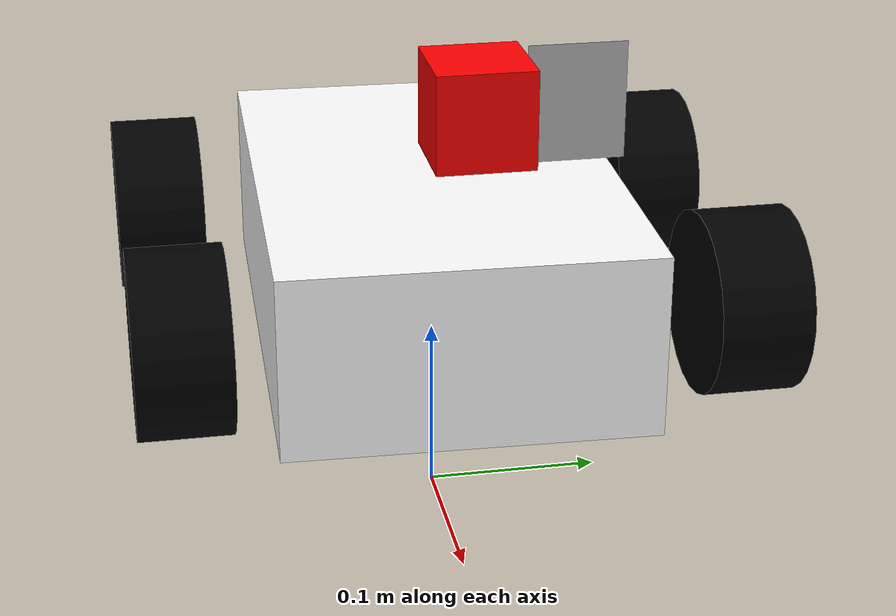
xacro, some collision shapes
<?xml version="1.0"?>

<robot xmlns:xacro="http://www.ros.org/wiki/xacro"
 	xmlns:sensor="http://playerstage.sourceforge.net/gazebo/xmlschema/#sensor"
    	xmlns:controller="http://playerstage.sourceforge.net/gazebo/xmlschema/#controller"
    	xmlns:interface="http://playerstage.sourceforge.net/gazebo/xmlschema/#interface"
	name="robot1_xacro">

	<xacro:property name="base_mass" value="5" /> <!-- in kg-->
	<xacro:property name="base_x_size" value="0.2" />
  	<xacro:property name="base_y_size" value="0.3" />
  	<xacro:property name="base_z_size" value="0.1" />

	<!-- Wheels -->
  	<xacro:property name="wheel_mass" value="1" /> <!-- in kg-->
	<xacro:property name="length_wheel" value="0.05" />
	<xacro:property name="radius_wheel" value="0.05" />
	<xacro:property name="camera_link" value="0.05" />

	<xacro:macro name="default_inertial" params="mass">
               <inertial>
                       <mass value="${mass}" />
                       <inertia ixx="1.0" ixy="0.0" ixz="0.0"
                                iyy="1.0" iyz="0.0"
                                izz="1.0" />
               </inertial>
	</xacro:macro>

  	<xacro:macro name="box_inertia" params="m x y z">
  	  <inertia  ixx="${m*(y*y+z*z)/12}" ixy = "0" ixz = "0"
  	            iyy="${m*(x*x+z*z)/12}" iyz = "0"
  	            izz="${m*(x*x+z*z)/12}" />
  	</xacro:macro>

	<xacro:macro name="cylinder_inertia" params="m r h">
	    <inertia  ixx="${m*(3*r*r+h*h)/12}" ixy = "0" ixz = "0"
	              iyy="${m*(3*r*r+h*h)/12}" iyz = "0"
	              izz="${m*r*r/2}" />
	</xacro:macro>

	<link name="base_footprint">
   		<visual>
			<geometry>
      				<box size="0.001 0.001 0.001"/>
     			</geometry>
			<origin rpy="0 0 0" xyz="0 0 0"/>
   		</visual>
 	</link>
 	<xacro:include filename="$(find robot1_description)/urdf/robot.gazebo" />

	<gazebo reference="base_footprint">
		<material>Gazebo/Green</material>
		<turnGravityOff>false</turnGravityOff>
	</gazebo>

	<joint name="base_footprint_joint" type="fixed">
		<origin xyz="0 0 0.15" />
		<parent link="base_footprint" />
		<child link="base_link" />
	</joint>

	<link name="base_link">
   		<visual>
			<geometry>
      				<box size="${base_x_size} .3 .1"/>
     			</geometry>
			<origin rpy="0 0 1.54" xyz="0 0 0"/>
			<material name="white">
				<color rgba="1 1 1 1"/>
			</material>
   		</visual>
		<collision>
			<geometry>
       				<box size="0.2 .3 0.1"/>
			</geometry>
		</collision>
		<inertial>
      		<mass value="${base_mass}" />
      			<origin xyz="0 0 0" />
      			<!--The 3x3 rotational inertia matrix. -->
      			<xacro:box_inertia  m="${base_mass}" x="${base_x_size}" y="${base_y_size}" z="${base_z_size}"/>
    		</inertial>

 	</link>

 	<link name="wheel_1">
   		<visual>
     			<geometry>
       				<cylinder length="${length_wheel}" radius="${radius_wheel}"/>
     			</geometry>
			<origin rpy="0 0 0" xyz="0 0 0"/>
   			<material name="black">
				<color rgba="0 0 0 1"/>
			</material>
		</visual>
		<collision>
			<geometry>
       				<cylinder length="${length_wheel}" radius="${radius_wheel}"/>
			</geometry>
		</collision>

		<inertial>
        		<mass value="${wheel_mass}" />
        		<origin xyz="0 0 0" />
        		<xacro:cylinder_inertia  m="${wheel_mass}" r="${radius_wheel}" h="${length_wheel}" />
      		</inertial>

 	</link>

 	<link name="wheel_2">
   		<visual>
     			<geometry>
       				<cylinder length="${length_wheel}" radius="${radius_wheel}"/>
     			</geometry>
			<origin rpy="0 0 0" xyz="0 0 0"/>
   			<material name="black"/>
   		</visual>
		<collision>
			<geometry>
       				<cylinder length="${length_wheel}" radius="${radius_wheel}"/>
			</geometry>
		</collision>
		<inertial>
                        <mass value="${wheel_mass}" />
                        <origin xyz="0 0 0" />
                        <xacro:cylinder_inertia  m="${wheel_mass}" r="${radius_wheel}" h="${length_wheel}" />
                </inertial>

 	</link>

 	<link name="wheel_3">
   		<visual>
     			<geometry>
       				<cylinder length="${length_wheel}" radius="${radius_wheel}"/>
     			</geometry>

			<origin rpy="0 0 0" xyz="0 0 0"/>
   			<material name="black"/>
   		</visual>
		<collision>
			<geometry>
       				<cylinder length="${length_wheel}" radius="${radius_wheel}"/>
			</geometry>
		</collision>
		<inertial>
                        <mass value="${wheel_mass}" />
                        <origin xyz="0 0 0" />
                        <xacro:cylinder_inertia  m="${wheel_mass}" r="${radius_wheel}" h="${length_wheel}" />
                </inertial>
 	</link>

 	<link name="wheel_4">
   		<visual>
     			<geometry>
       				<cylinder length="${length_wheel}" radius="${radius_wheel}"/>
     			</geometry>
			<origin rpy="0 0 0" xyz="0 0 0" />
   			<material name="black"/>
   		</visual>
		<collision>
			<geometry>
       				<cylinder length="${length_wheel}" radius="${radius_wheel}"/>
			</geometry>
		</collision>
		<inertial>
                        <mass value="${wheel_mass}" />
                        <origin xyz="0 0 0" />
                        <xacro:cylinder_inertia  m="${wheel_mass}" r="${radius_wheel}" h="${length_wheel}" />
                </inertial>

 	</link>

 <joint name="base_to_wheel1" type="continuous">
   <parent link="base_link"/>
   <child link="wheel_1"/>
   <origin rpy="-1.5707 0 0" xyz="0.1 0.15 0"/>
   <axis xyz="0 0 1" />
 </joint>

 <joint name="base_to_wheel2" type="continuous">
   <axis xyz="0 0 1" />
   <anchor xyz="0 0 0" />
   <limit effort="100" velocity="100" />
   <parent link="base_link"/>
   <child link="wheel_2"/>
   <origin rpy="-1.5707 0 0" xyz="-0.1 0.15 0"/>
</joint>

 <joint name="base_to_wheel3" type="continuous">
   <parent link="base_link"/>
   <axis xyz="0 0 1" />
   <child link="wheel_3"/>
   <origin rpy="-1.5707 0 0" xyz="0.1 -0.15 0"/>
 </joint>

 <joint name="base_to_wheel4" type="continuous">
   <parent link="base_link"/>
   <axis xyz="0 0 1" />
   <child link="wheel_4"/>
   <origin rpy="-1.5707 0 0" xyz="-0.1 -0.15 0"/>
 </joint>
  <!-- Camera joint -->
  <joint name="camera_joint" type="fixed">
    <axis xyz="0 1 0" />
    <origin xyz="0.125 0 0.125" rpy="0 0 0"/>
    <parent link="base_link"/>
    <child link="camera_link"/>
  </joint>

  <!-- Camera -->
  <link name="camera_link">
    <collision>
      <origin xyz="0 0 0" rpy="0 0 0"/>
      <geometry>
	<box size="0.05 0.05 0.05"/>
      </geometry>
    </collision>

    <visual>
      <origin xyz="0 0 0" rpy="0 0 0"/>
      <geometry>
	<box size="0.05 0.05 0.05"/>
      </geometry>
      <material name="red">
	<color rgba="1 0 0 1"/>
      </material>
    </visual>

    <inertial>
      <mass value="1e-5" />
      <origin xyz="0 0 0" rpy="0 0 0"/>
      <inertia ixx="1e-6" ixy="0" ixz="0" iyy="1e-6" iyz="0" izz="1e-6" />
    </inertial>
  </link>

  <!-- Hokuyo joint -->
  <joint name="hokuyo_joint" type="fixed">
    <origin xyz="0.125 0.05 0.125" rpy="0 0 0"/>
    <parent link="base_link"/>
    <axis xyz="0 1 0" />
    <child link="hokuyo_link"/>
  </joint>

  <!-- Hokuyo Laser -->
  <link name="hokuyo_link">
    <collision>
      <origin xyz="0 0 0" rpy="0 0 0"/>
      <geometry>
	<box size="0.0 -0.05 0.06"/>
      </geometry>
    </collision>

    <visual>
      <origin xyz="0 -0.05 0.06" rpy="0 0 0"/>
      <geometry>
        <mesh filename="package://robot1_description/meshes/hokuyo.dae"/>
      </geometry>
    </visual>

    <inertial>
      <mass value="1e-5" />
      <origin xyz="0 0 0" rpy="0 0 0"/>
      <inertia ixx="1e-6" ixy="0" ixz="0" iyy="1e-6" iyz="0" izz="1e-6" />
    </inertial>
  </link>

  <!-- Drive controller -->
<gazebo>
  <plugin name="skid_steer_drive_controller" filename="libgazebo_ros_skid_steer_drive.so">
    <updateRate>100.0</updateRate>
    <robotNamespace>/</robotNamespace>
    <leftFrontJoint>base_to_wheel1</leftFrontJoint>
    <rightFrontJoint>base_to_wheel3</rightFrontJoint>
    <leftRearJoint>base_to_wheel2</leftRearJoint>
    <rightRearJoint>base_to_wheel4</rightRearJoint>
    <wheelSeparation>4</wheelSeparation>
    <wheelDiameter>0.1</wheelDiameter>
    <robotBaseFrame>base_footprint</robotBaseFrame>
    <torque>3</torque>
    <topicName>cmd_vel</topicName>
    <broadcastTF>1</broadcastTF>
  </plugin>
</gazebo>

</robot>
